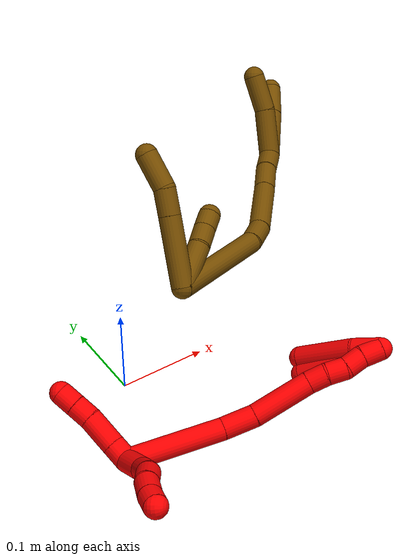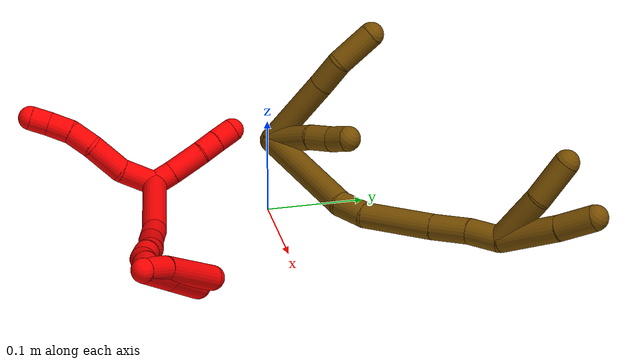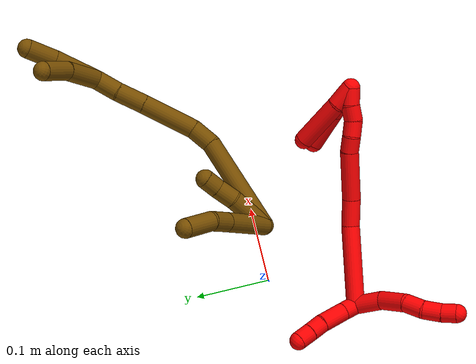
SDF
<sdf version="1.7">
 <world name="default">
  <model name="2">
   <static>0</static>
   <link name="2">
    <collision name="collision-cylinder-e_1_2_8">
     <pose>-0.012272 -0.00541 0.014466 0.35787 -0.671418 -0.126049</pose>
     <geometry><cylinder><radius>0.0125</radius><length>0.039454</length></cylinder></geometry>
     <surface>
      <friction><ode><mu>1.16</mu><mu2>1.16</mu2><slip1>0</slip1><slip2>0</slip2></ode></friction>
      <contact><ode><kp>1e+06</kp><kd>1</kd><max_vel>0</max_vel><min_depth>0.001</min_depth></ode></contact>
     </surface>
    </collision>
    <visual name="visual-cylinder-e_1_2_8">
     <pose>-0.012272 -0.00541 0.014466 0.35787 -0.671418 -0.126049</pose>
     <geometry><cylinder><radius>0.0125</radius><length>0.039454</length></cylinder></geometry>
     <material><ambient>1 0 0 1</ambient></material>
    </visual>
    <collision name="collision-cylinder-e_2_8_9">
     <pose>-0.041014 -0.013768 0.039009 0.28461 -1.00333 -0.156839</pose>
     <geometry><cylinder><radius>0.0125</radius><length>0.039063</length></cylinder></geometry>
     <surface>
      <friction><ode><mu>1.16</mu><mu2>1.16</mu2><slip1>0</slip1><slip2>0</slip2></ode></friction>
      <contact><ode><kp>1e+06</kp><kd>1</kd><max_vel>0</max_vel><min_depth>0.001</min_depth></ode></contact>
     </surface>
    </collision>
    <visual name="visual-cylinder-e_2_8_9">
     <pose>-0.041014 -0.013768 0.039009 0.28461 -1.00333 -0.156839</pose>
     <geometry><cylinder><radius>0.0125</radius><length>0.039063</length></cylinder></geometry>
     <material><ambient>1 0 0 1</ambient></material>
    </visual>
    <collision name="collision-cylinder-e_3_9_10">
     <pose>-0.068954 -0.022055 0.053333 0.898626 -1.03412 -0.535274</pose>
     <geometry><cylinder><radius>0.0125</radius><length>0.026692</length></cylinder></geometry>
     <surface>
      <friction><ode><mu>1.16</mu><mu2>1.16</mu2><slip1>0</slip1><slip2>0</slip2></ode></friction>
      <contact><ode><kp>1e+06</kp><kd>1</kd><max_vel>0</max_vel><min_depth>0.001</min_depth></ode></contact>
     </surface>
    </collision>
    <visual name="visual-cylinder-e_3_9_10">
     <pose>-0.068954 -0.022055 0.053333 0.898626 -1.03412 -0.535274</pose>
     <geometry><cylinder><radius>0.0125</radius><length>0.026692</length></cylinder></geometry>
     <material><ambient>1 0 0 1</ambient></material>
    </visual>
    <collision name="collision-cylinder-e_4_10_11">
     <pose>-0.089059 -0.034055 0.063322 0.859537 -0.776304 -0.370529</pose>
     <geometry><cylinder><radius>0.0125</radius><length>0.024649</length></cylinder></geometry>
     <surface>
      <friction><ode><mu>1.16</mu><mu2>1.16</mu2><slip1>0</slip1><slip2>0</slip2></ode></friction>
      <contact><ode><kp>1e+06</kp><kd>1</kd><max_vel>0</max_vel><min_depth>0.001</min_depth></ode></contact>
     </surface>
    </collision>
    <visual name="visual-cylinder-e_4_10_11">
     <pose>-0.089059 -0.034055 0.063322 0.859537 -0.776304 -0.370529</pose>
     <geometry><cylinder><radius>0.0125</radius><length>0.024649</length></cylinder></geometry>
     <material><ambient>1 0 0 1</ambient></material>
    </visual>
    <collision name="collision-cylinder-e_5_11_6">
     <pose>-0.104193 -0.045739 0.074892 0.71113 -0.701403 -0.270043</pose>
     <geometry><cylinder><radius>0.0125</radius><length>0.020143</length></cylinder></geometry>
     <surface>
      <friction><ode><mu>1.16</mu><mu2>1.16</mu2><slip1>0</slip1><slip2>0</slip2></ode></friction>
      <contact><ode><kp>1e+06</kp><kd>1</kd><max_vel>0</max_vel><min_depth>0.001</min_depth></ode></contact>
     </surface>
    </collision>
    <visual name="visual-cylinder-e_5_11_6">
     <pose>-0.104193 -0.045739 0.074892 0.71113 -0.701403 -0.270043</pose>
     <geometry><cylinder><radius>0.0125</radius><length>0.020143</length></cylinder></geometry>
     <material><ambient>1 0 0 1</ambient></material>
    </visual>
    <collision name="collision-cylinder-e_1_2_12">
     <pose>-0.001584 0.007609 -0.007274 -2.33372 -0.149318 0.346471</pose>
     <geometry><cylinder><radius>0.0125</radius><length>0.021291</length></cylinder></geometry>
     <surface>
      <friction><ode><mu>1.16</mu><mu2>1.16</mu2><slip1>0</slip1><slip2>0</slip2></ode></friction>
      <contact><ode><kp>1e+06</kp><kd>1</kd><max_vel>0</max_vel><min_depth>0.001</min_depth></ode></contact>
     </surface>
    </collision>
    <visual name="visual-cylinder-e_1_2_12">
     <pose>-0.001584 0.007609 -0.007274 -2.33372 -0.149318 0.346471</pose>
     <geometry><cylinder><radius>0.0125</radius><length>0.021291</length></cylinder></geometry>
     <material><ambient>1 0 0 1</ambient></material>
    </visual>
    <collision name="collision-cylinder-e_2_12_13">
     <pose>-0.006835 0.028543 -0.026838 -2.31575 -0.199651 0.449508</pose>
     <geometry><cylinder><radius>0.0125</radius><length>0.036988</length></cylinder></geometry>
     <surface>
      <friction><ode><mu>1.16</mu><mu2>1.16</mu2><slip1>0</slip1><slip2>0</slip2></ode></friction>
      <contact><ode><kp>1e+06</kp><kd>1</kd><max_vel>0</max_vel><min_depth>0.001</min_depth></ode></contact>
     </surface>
    </collision>
    <visual name="visual-cylinder-e_2_12_13">
     <pose>-0.006835 0.028543 -0.026838 -2.31575 -0.199651 0.449508</pose>
     <geometry><cylinder><radius>0.0125</radius><length>0.036988</length></cylinder></geometry>
     <material><ambient>1 0 0 1</ambient></material>
    </visual>
    <collision name="collision-cylinder-e_3_13_14">
     <pose>-0.013111 0.048338 -0.046914 -2.44839 -0.252078 0.674817</pose>
     <geometry><cylinder><radius>0.0125</radius><length>0.020909</length></cylinder></geometry>
     <surface>
      <friction><ode><mu>1.16</mu><mu2>1.16</mu2><slip1>0</slip1><slip2>0</slip2></ode></friction>
      <contact><ode><kp>1e+06</kp><kd>1</kd><max_vel>0</max_vel><min_depth>0.001</min_depth></ode></contact>
     </surface>
    </collision>
    <visual name="visual-cylinder-e_3_13_14">
     <pose>-0.013111 0.048338 -0.046914 -2.44839 -0.252078 0.674817</pose>
     <geometry><cylinder><radius>0.0125</radius><length>0.020909</length></cylinder></geometry>
     <material><ambient>1 0 0 1</ambient></material>
    </visual>
    <collision name="collision-cylinder-e_4_14_5">
     <pose>-0.018023 0.061225 -0.062562 -2.45688 -0.223327 0.609646</pose>
     <geometry><cylinder><radius>0.0125</radius><length>0.020812</length></cylinder></geometry>
     <surface>
      <friction><ode><mu>1.16</mu><mu2>1.16</mu2><slip1>0</slip1><slip2>0</slip2></ode></friction>
      <contact><ode><kp>1e+06</kp><kd>1</kd><max_vel>0</max_vel><min_depth>0.001</min_depth></ode></contact>
     </surface>
    </collision>
    <visual name="visual-cylinder-e_4_14_5">
     <pose>-0.018023 0.061225 -0.062562 -2.45688 -0.223327 0.609646</pose>
     <geometry><cylinder><radius>0.0125</radius><length>0.020812</length></cylinder></geometry>
     <material><ambient>1 0 0 1</ambient></material>
    </visual>
    <collision name="collision-cylinder-e_1_2_15">
     <pose>0.028809 0.01939 0.041359 -0.438392 0.562689 -0.128592</pose>
     <geometry><cylinder><radius>0.0125</radius><length>0.108009</length></cylinder></geometry>
     <surface>
      <friction><ode><mu>1.16</mu><mu2>1.16</mu2><slip1>0</slip1><slip2>0</slip2></ode></friction>
      <contact><ode><kp>1e+06</kp><kd>1</kd><max_vel>0</max_vel><min_depth>0.001</min_depth></ode></contact>
     </surface>
    </collision>
    <visual name="visual-cylinder-e_1_2_15">
     <pose>0.028809 0.01939 0.041359 -0.438392 0.562689 -0.128592</pose>
     <geometry><cylinder><radius>0.0125</radius><length>0.108009</length></cylinder></geometry>
     <material><ambient>1 0 0 1</ambient></material>
    </visual>
    <collision name="collision-cylinder-e_2_15_16">
     <pose>0.063967 0.046546 0.09836 -0.460822 0.348637 -0.082574</pose>
     <geometry><cylinder><radius>0.0125</radius><length>0.037164</length></cylinder></geometry>
     <surface>
      <friction><ode><mu>1.16</mu><mu2>1.16</mu2><slip1>0</slip1><slip2>0</slip2></ode></friction>
      <contact><ode><kp>1e+06</kp><kd>1</kd><max_vel>0</max_vel><min_depth>0.001</min_depth></ode></contact>
     </surface>
    </collision>
    <visual name="visual-cylinder-e_2_15_16">
     <pose>0.063967 0.046546 0.09836 -0.460822 0.348637 -0.082574</pose>
     <geometry><cylinder><radius>0.0125</radius><length>0.037164</length></cylinder></geometry>
     <material><ambient>1 0 0 1</ambient></material>
    </visual>
    <collision name="collision-cylinder-e_3_16_17">
     <pose>0.078746 0.072857 0.140846 -0.604585 0.252882 -0.079243</pose>
     <geometry><cylinder><radius>0.0125</radius><length>0.067397</length></cylinder></geometry>
     <surface>
      <friction><ode><mu>1.16</mu><mu2>1.16</mu2><slip1>0</slip1><slip2>0</slip2></ode></friction>
      <contact><ode><kp>1e+06</kp><kd>1</kd><max_vel>0</max_vel><min_depth>0.001</min_depth></ode></contact>
     </surface>
    </collision>
    <visual name="visual-cylinder-e_3_16_17">
     <pose>0.078746 0.072857 0.140846 -0.604585 0.252882 -0.079243</pose>
     <geometry><cylinder><radius>0.0125</radius><length>0.067397</length></cylinder></geometry>
     <material><ambient>1 0 0 1</ambient></material>
    </visual>
    <collision name="collision-cylinder-e_4_17_18">
     <pose>0.088839 0.096154 0.177228 -0.462085 0.154681 -0.036456</pose>
     <geometry><cylinder><radius>0.0125</radius><length>0.021572</length></cylinder></geometry>
     <surface>
      <friction><ode><mu>1.16</mu><mu2>1.16</mu2><slip1>0</slip1><slip2>0</slip2></ode></friction>
      <contact><ode><kp>1e+06</kp><kd>1</kd><max_vel>0</max_vel><min_depth>0.001</min_depth></ode></contact>
     </surface>
    </collision>
    <visual name="visual-cylinder-e_4_17_18">
     <pose>0.088839 0.096154 0.177228 -0.462085 0.154681 -0.036456</pose>
     <geometry><cylinder><radius>0.0125</radius><length>0.021572</length></cylinder></geometry>
     <material><ambient>1 0 0 1</ambient></material>
    </visual>
    <collision name="collision-cylinder-e_5_18_19">
     <pose>0.094027 0.104475 0.196201 -0.361808 0.336322 -0.062081</pose>
     <geometry><cylinder><radius>0.0125</radius><length>0.02137</length></cylinder></geometry>
     <surface>
      <friction><ode><mu>1.16</mu><mu2>1.16</mu2><slip1>0</slip1><slip2>0</slip2></ode></friction>
      <contact><ode><kp>1e+06</kp><kd>1</kd><max_vel>0</max_vel><min_depth>0.001</min_depth></ode></contact>
     </surface>
    </collision>
    <visual name="visual-cylinder-e_5_18_19">
     <pose>0.094027 0.104475 0.196201 -0.361808 0.336322 -0.062081</pose>
     <geometry><cylinder><radius>0.0125</radius><length>0.02137</length></cylinder></geometry>
     <material><ambient>1 0 0 1</ambient></material>
    </visual>
    <collision name="collision-cylinder-e_6_19_20">
     <pose>0.10135 0.114742 0.213201 -0.724518 0.359448 -0.137494</pose>
     <geometry><cylinder><radius>0.0125</radius><length>0.021588</length></cylinder></geometry>
     <surface>
      <friction><ode><mu>1.16</mu><mu2>1.16</mu2><slip1>0</slip1><slip2>0</slip2></ode></friction>
      <contact><ode><kp>1e+06</kp><kd>1</kd><max_vel>0</max_vel><min_depth>0.001</min_depth></ode></contact>
     </surface>
    </collision>
    <visual name="visual-cylinder-e_6_19_20">
     <pose>0.10135 0.114742 0.213201 -0.724518 0.359448 -0.137494</pose>
     <geometry><cylinder><radius>0.0125</radius><length>0.021588</length></cylinder></geometry>
     <material><ambient>1 0 0 1</ambient></material>
    </visual>
    <collision name="collision-cylinder-e_7_20_1">
     <pose>0.109143 0.126239 0.230364 -0.463759 0.356502 -0.085031</pose>
     <geometry><cylinder><radius>0.0125</radius><length>0.0229</length></cylinder></geometry>
     <surface>
      <friction><ode><mu>1.16</mu><mu2>1.16</mu2><slip1>0</slip1><slip2>0</slip2></ode></friction>
      <contact><ode><kp>1e+06</kp><kd>1</kd><max_vel>0</max_vel><min_depth>0.001</min_depth></ode></contact>
     </surface>
    </collision>
    <visual name="visual-cylinder-e_7_20_1">
     <pose>0.109143 0.126239 0.230364 -0.463759 0.356502 -0.085031</pose>
     <geometry><cylinder><radius>0.0125</radius><length>0.0229</length></cylinder></geometry>
     <material><ambient>1 0 0 1</ambient></material>
    </visual>
    <collision name="collision-cylinder-e_1_1_21">
     <pose>0.118833 0.126125 0.218504 2.91647 0.253143 1.68894</pose>
     <geometry><cylinder><radius>0.0125</radius><length>0.045472</length></cylinder></geometry>
     <surface>
      <friction><ode><mu>1.16</mu><mu2>1.16</mu2><slip1>0</slip1><slip2>0</slip2></ode></friction>
      <contact><ode><kp>1e+06</kp><kd>1</kd><max_vel>0</max_vel><min_depth>0.001</min_depth></ode></contact>
     </surface>
    </collision>
    <visual name="visual-cylinder-e_1_1_21">
     <pose>0.118833 0.126125 0.218504 2.91647 0.253143 1.68894</pose>
     <geometry><cylinder><radius>0.0125</radius><length>0.045472</length></cylinder></geometry>
     <material><ambient>1 0 0 1</ambient></material>
    </visual>
    <collision name="collision-cylinder-e_2_21_4">
     <pose>0.131218 0.115172 0.171317 2.91105 0.247924 1.64413</pose>
     <geometry><cylinder><radius>0.0125</radius><length>0.054528</length></cylinder></geometry>
     <surface>
      <friction><ode><mu>1.16</mu><mu2>1.16</mu2><slip1>0</slip1><slip2>0</slip2></ode></friction>
      <contact><ode><kp>1e+06</kp><kd>1</kd><max_vel>0</max_vel><min_depth>0.001</min_depth></ode></contact>
     </surface>
    </collision>
    <visual name="visual-cylinder-e_2_21_4">
     <pose>0.131218 0.115172 0.171317 2.91105 0.247924 1.64413</pose>
     <geometry><cylinder><radius>0.0125</radius><length>0.054528</length></cylinder></geometry>
     <material><ambient>1 0 0 1</ambient></material>
    </visual>
    <collision name="collision-cylinder-e_1_1_22">
     <pose>0.115034 0.131345 0.22466 -3.12154 0.123232 -2.8194</pose>
     <geometry><cylinder><radius>0.0125</radius><length>0.03084</length></cylinder></geometry>
     <surface>
      <friction><ode><mu>1.16</mu><mu2>1.16</mu2><slip1>0</slip1><slip2>0</slip2></ode></friction>
      <contact><ode><kp>1e+06</kp><kd>1</kd><max_vel>0</max_vel><min_depth>0.001</min_depth></ode></contact>
     </surface>
    </collision>
    <visual name="visual-cylinder-e_1_1_22">
     <pose>0.115034 0.131345 0.22466 -3.12154 0.123232 -2.8194</pose>
     <geometry><cylinder><radius>0.0125</radius><length>0.03084</length></cylinder></geometry>
     <material><ambient>1 0 0 1</ambient></material>
    </visual>
    <collision name="collision-cylinder-e_2_22_3">
     <pose>0.126966 0.129412 0.176345 3.07383 0.294461 2.69225</pose>
     <geometry><cylinder><radius>0.0125</radius><length>0.06916</length></cylinder></geometry>
     <surface>
      <friction><ode><mu>1.16</mu><mu2>1.16</mu2><slip1>0</slip1><slip2>0</slip2></ode></friction>
      <contact><ode><kp>1e+06</kp><kd>1</kd><max_vel>0</max_vel><min_depth>0.001</min_depth></ode></contact>
     </surface>
    </collision>
    <visual name="visual-cylinder-e_2_22_3">
     <pose>0.126966 0.129412 0.176345 3.07383 0.294461 2.69225</pose>
     <geometry><cylinder><radius>0.0125</radius><length>0.06916</length></cylinder></geometry>
     <material><ambient>1 0 0 1</ambient></material>
    </visual>
    <collision name="collision-sphere-3">
     <pose>0.137002 0.127171 0.143329 0 -0 0</pose>
     <geometry><sphere><radius>0.0125</radius></sphere></geometry>
     <surface>
      <friction><ode><mu>1.16</mu><mu2>1.16</mu2><slip1>0</slip1><slip2>0</slip2></ode></friction>
      <contact><ode><kp>1e+06</kp><kd>1</kd><max_vel>0</max_vel><min_depth>0.001</min_depth></ode></contact>
     </surface>
    </collision>
    <visual name="visual-sphere-3">
     <pose>0.137002 0.127171 0.143329 0 -0 0</pose>
     <geometry><sphere><radius>0.0125</radius></sphere></geometry>
     <material><ambient>1 0 0 1</ambient></material>
    </visual>
    <collision name="collision-sphere-22">
     <pose>0.11693 0.131652 0.209361 0 -0 0</pose>
     <geometry><sphere><radius>0.0125</radius></sphere></geometry>
     <surface>
      <friction><ode><mu>1.16</mu><mu2>1.16</mu2><slip1>0</slip1><slip2>0</slip2></ode></friction>
      <contact><ode><kp>1e+06</kp><kd>1</kd><max_vel>0</max_vel><min_depth>0.001</min_depth></ode></contact>
     </surface>
    </collision>
    <visual name="visual-sphere-22">
     <pose>0.11693 0.131652 0.209361 0 -0 0</pose>
     <geometry><sphere><radius>0.0125</radius></sphere></geometry>
     <material><ambient>1 0 0 1</ambient></material>
    </visual>
    <collision name="collision-sphere-4">
     <pose>0.137908 0.109133 0.145586 0 -0 0</pose>
     <geometry><sphere><radius>0.0125</radius></sphere></geometry>
     <surface>
      <friction><ode><mu>1.16</mu><mu2>1.16</mu2><slip1>0</slip1><slip2>0</slip2></ode></friction>
      <contact><ode><kp>1e+06</kp><kd>1</kd><max_vel>0</max_vel><min_depth>0.001</min_depth></ode></contact>
     </surface>
    </collision>
    <visual name="visual-sphere-4">
     <pose>0.137908 0.109133 0.145586 0 -0 0</pose>
     <geometry><sphere><radius>0.0125</radius></sphere></geometry>
     <material><ambient>1 0 0 1</ambient></material>
    </visual>
    <collision name="collision-sphere-21">
     <pose>0.124527 0.121211 0.197049 0 -0 0</pose>
     <geometry><sphere><radius>0.0125</radius></sphere></geometry>
     <surface>
      <friction><ode><mu>1.16</mu><mu2>1.16</mu2><slip1>0</slip1><slip2>0</slip2></ode></friction>
      <contact><ode><kp>1e+06</kp><kd>1</kd><max_vel>0</max_vel><min_depth>0.001</min_depth></ode></contact>
     </surface>
    </collision>
    <visual name="visual-sphere-21">
     <pose>0.124527 0.121211 0.197049 0 -0 0</pose>
     <geometry><sphere><radius>0.0125</radius></sphere></geometry>
     <material><ambient>1 0 0 1</ambient></material>
    </visual>
    <collision name="collision-sphere-1">
     <pose>0.113139 0.131038 0.23996 0 -0 0</pose>
     <geometry><sphere><radius>0.0125</radius></sphere></geometry>
     <surface>
      <friction><ode><mu>1.16</mu><mu2>1.16</mu2><slip1>0</slip1><slip2>0</slip2></ode></friction>
      <contact><ode><kp>1e+06</kp><kd>1</kd><max_vel>0</max_vel><min_depth>0.001</min_depth></ode></contact>
     </surface>
    </collision>
    <visual name="visual-sphere-1">
     <pose>0.113139 0.131038 0.23996 0 -0 0</pose>
     <geometry><sphere><radius>0.0125</radius></sphere></geometry>
     <material><ambient>1 0 0 1</ambient></material>
    </visual>
    <collision name="collision-sphere-6">
     <pose>-0.110692 -0.05076 0.080721 0 -0 0</pose>
     <geometry><sphere><radius>0.0125</radius></sphere></geometry>
     <surface>
      <friction><ode><mu>1.16</mu><mu2>1.16</mu2><slip1>0</slip1><slip2>0</slip2></ode></friction>
      <contact><ode><kp>1e+06</kp><kd>1</kd><max_vel>0</max_vel><min_depth>0.001</min_depth></ode></contact>
     </surface>
    </collision>
    <visual name="visual-sphere-6">
     <pose>-0.110692 -0.05076 0.080721 0 -0 0</pose>
     <geometry><sphere><radius>0.0125</radius></sphere></geometry>
     <material><ambient>1 0 0 1</ambient></material>
    </visual>
    <collision name="collision-sphere-11">
     <pose>-0.097694 -0.040717 0.069063 0 -0 0</pose>
     <geometry><sphere><radius>0.0125</radius></sphere></geometry>
     <surface>
      <friction><ode><mu>1.16</mu><mu2>1.16</mu2><slip1>0</slip1><slip2>0</slip2></ode></friction>
      <contact><ode><kp>1e+06</kp><kd>1</kd><max_vel>0</max_vel><min_depth>0.001</min_depth></ode></contact>
     </surface>
    </collision>
    <visual name="visual-sphere-11">
     <pose>-0.097694 -0.040717 0.069063 0 -0 0</pose>
     <geometry><sphere><radius>0.0125</radius></sphere></geometry>
     <material><ambient>1 0 0 1</ambient></material>
    </visual>
    <collision name="collision-sphere-10">
     <pose>-0.080424 -0.027394 0.057582 0 -0 0</pose>
     <geometry><sphere><radius>0.0125</radius></sphere></geometry>
     <surface>
      <friction><ode><mu>1.16</mu><mu2>1.16</mu2><slip1>0</slip1><slip2>0</slip2></ode></friction>
      <contact><ode><kp>1e+06</kp><kd>1</kd><max_vel>0</max_vel><min_depth>0.001</min_depth></ode></contact>
     </surface>
    </collision>
    <visual name="visual-sphere-10">
     <pose>-0.080424 -0.027394 0.057582 0 -0 0</pose>
     <geometry><sphere><radius>0.0125</radius></sphere></geometry>
     <material><ambient>1 0 0 1</ambient></material>
    </visual>
    <collision name="collision-sphere-9">
     <pose>-0.057484 -0.016715 0.049084 0 -0 0</pose>
     <geometry><sphere><radius>0.0125</radius></sphere></geometry>
     <surface>
      <friction><ode><mu>1.16</mu><mu2>1.16</mu2><slip1>0</slip1><slip2>0</slip2></ode></friction>
      <contact><ode><kp>1e+06</kp><kd>1</kd><max_vel>0</max_vel><min_depth>0.001</min_depth></ode></contact>
     </surface>
    </collision>
    <visual name="visual-sphere-9">
     <pose>-0.057484 -0.016715 0.049084 0 -0 0</pose>
     <geometry><sphere><radius>0.0125</radius></sphere></geometry>
     <material><ambient>1 0 0 1</ambient></material>
    </visual>
    <collision name="collision-sphere-2">
     <geometry><sphere><radius>0.0125</radius></sphere></geometry>
     <surface>
      <friction><ode><mu>1.16</mu><mu2>1.16</mu2><slip1>0</slip1><slip2>0</slip2></ode></friction>
      <contact><ode><kp>1e+06</kp><kd>1</kd><max_vel>0</max_vel><min_depth>0.001</min_depth></ode></contact>
     </surface>
    </collision>
    <visual name="visual-sphere-2">
     <geometry><sphere><radius>0.0125</radius></sphere></geometry>
     <material><ambient>1 0 0 1</ambient></material>
    </visual>
    <collision name="collision-sphere-19">
     <pose>0.097553 0.108046 0.205635 0 -0 0</pose>
     <geometry><sphere><radius>0.0125</radius></sphere></geometry>
     <surface>
      <friction><ode><mu>1.16</mu><mu2>1.16</mu2><slip1>0</slip1><slip2>0</slip2></ode></friction>
      <contact><ode><kp>1e+06</kp><kd>1</kd><max_vel>0</max_vel><min_depth>0.001</min_depth></ode></contact>
     </surface>
    </collision>
    <visual name="visual-sphere-19">
     <pose>0.097553 0.108046 0.205635 0 -0 0</pose>
     <geometry><sphere><radius>0.0125</radius></sphere></geometry>
     <material><ambient>1 0 0 1</ambient></material>
    </visual>
    <collision name="collision-sphere-8">
     <pose>-0.024544 -0.01082 0.028933 0 -0 0</pose>
     <geometry><sphere><radius>0.0125</radius></sphere></geometry>
     <surface>
      <friction><ode><mu>1.16</mu><mu2>1.16</mu2><slip1>0</slip1><slip2>0</slip2></ode></friction>
      <contact><ode><kp>1e+06</kp><kd>1</kd><max_vel>0</max_vel><min_depth>0.001</min_depth></ode></contact>
     </surface>
    </collision>
    <visual name="visual-sphere-8">
     <pose>-0.024544 -0.01082 0.028933 0 -0 0</pose>
     <geometry><sphere><radius>0.0125</radius></sphere></geometry>
     <material><ambient>1 0 0 1</ambient></material>
    </visual>
    <collision name="collision-sphere-12">
     <pose>-0.003167 0.015218 -0.014549 0 -0 0</pose>
     <geometry><sphere><radius>0.0125</radius></sphere></geometry>
     <surface>
      <friction><ode><mu>1.16</mu><mu2>1.16</mu2><slip1>0</slip1><slip2>0</slip2></ode></friction>
      <contact><ode><kp>1e+06</kp><kd>1</kd><max_vel>0</max_vel><min_depth>0.001</min_depth></ode></contact>
     </surface>
    </collision>
    <visual name="visual-sphere-12">
     <pose>-0.003167 0.015218 -0.014549 0 -0 0</pose>
     <geometry><sphere><radius>0.0125</radius></sphere></geometry>
     <material><ambient>1 0 0 1</ambient></material>
    </visual>
    <collision name="collision-sphere-13">
     <pose>-0.010503 0.041869 -0.039127 0 -0 0</pose>
     <geometry><sphere><radius>0.0125</radius></sphere></geometry>
     <surface>
      <friction><ode><mu>1.16</mu><mu2>1.16</mu2><slip1>0</slip1><slip2>0</slip2></ode></friction>
      <contact><ode><kp>1e+06</kp><kd>1</kd><max_vel>0</max_vel><min_depth>0.001</min_depth></ode></contact>
     </surface>
    </collision>
    <visual name="visual-sphere-13">
     <pose>-0.010503 0.041869 -0.039127 0 -0 0</pose>
     <geometry><sphere><radius>0.0125</radius></sphere></geometry>
     <material><ambient>1 0 0 1</ambient></material>
    </visual>
    <collision name="collision-sphere-14">
     <pose>-0.015718 0.054807 -0.054701 0 -0 0</pose>
     <geometry><sphere><radius>0.0125</radius></sphere></geometry>
     <surface>
      <friction><ode><mu>1.16</mu><mu2>1.16</mu2><slip1>0</slip1><slip2>0</slip2></ode></friction>
      <contact><ode><kp>1e+06</kp><kd>1</kd><max_vel>0</max_vel><min_depth>0.001</min_depth></ode></contact>
     </surface>
    </collision>
    <visual name="visual-sphere-14">
     <pose>-0.015718 0.054807 -0.054701 0 -0 0</pose>
     <geometry><sphere><radius>0.0125</radius></sphere></geometry>
     <material><ambient>1 0 0 1</ambient></material>
    </visual>
    <collision name="collision-sphere-5">
     <pose>-0.020327 0.067643 -0.070422 0 -0 0</pose>
     <geometry><sphere><radius>0.0125</radius></sphere></geometry>
     <surface>
      <friction><ode><mu>1.16</mu><mu2>1.16</mu2><slip1>0</slip1><slip2>0</slip2></ode></friction>
      <contact><ode><kp>1e+06</kp><kd>1</kd><max_vel>0</max_vel><min_depth>0.001</min_depth></ode></contact>
     </surface>
    </collision>
    <visual name="visual-sphere-5">
     <pose>-0.020327 0.067643 -0.070422 0 -0 0</pose>
     <geometry><sphere><radius>0.0125</radius></sphere></geometry>
     <material><ambient>1 0 0 1</ambient></material>
    </visual>
    <collision name="collision-sphere-15">
     <pose>0.057619 0.03878 0.082718 0 -0 0</pose>
     <geometry><sphere><radius>0.0125</radius></sphere></geometry>
     <surface>
      <friction><ode><mu>1.16</mu><mu2>1.16</mu2><slip1>0</slip1><slip2>0</slip2></ode></friction>
      <contact><ode><kp>1e+06</kp><kd>1</kd><max_vel>0</max_vel><min_depth>0.001</min_depth></ode></contact>
     </surface>
    </collision>
    <visual name="visual-sphere-15">
     <pose>0.057619 0.03878 0.082718 0 -0 0</pose>
     <geometry><sphere><radius>0.0125</radius></sphere></geometry>
     <material><ambient>1 0 0 1</ambient></material>
    </visual>
    <collision name="collision-sphere-16">
     <pose>0.070315 0.054312 0.114002 0 -0 0</pose>
     <geometry><sphere><radius>0.0125</radius></sphere></geometry>
     <surface>
      <friction><ode><mu>1.16</mu><mu2>1.16</mu2><slip1>0</slip1><slip2>0</slip2></ode></friction>
      <contact><ode><kp>1e+06</kp><kd>1</kd><max_vel>0</max_vel><min_depth>0.001</min_depth></ode></contact>
     </surface>
    </collision>
    <visual name="visual-sphere-16">
     <pose>0.070315 0.054312 0.114002 0 -0 0</pose>
     <geometry><sphere><radius>0.0125</radius></sphere></geometry>
     <material><ambient>1 0 0 1</ambient></material>
    </visual>
    <collision name="collision-sphere-17">
     <pose>0.087177 0.091403 0.167689 0 -0 0</pose>
     <geometry><sphere><radius>0.0125</radius></sphere></geometry>
     <surface>
      <friction><ode><mu>1.16</mu><mu2>1.16</mu2><slip1>0</slip1><slip2>0</slip2></ode></friction>
      <contact><ode><kp>1e+06</kp><kd>1</kd><max_vel>0</max_vel><min_depth>0.001</min_depth></ode></contact>
     </surface>
    </collision>
    <visual name="visual-sphere-17">
     <pose>0.087177 0.091403 0.167689 0 -0 0</pose>
     <geometry><sphere><radius>0.0125</radius></sphere></geometry>
     <material><ambient>1 0 0 1</ambient></material>
    </visual>
    <collision name="collision-sphere-18">
     <pose>0.090501 0.100905 0.186768 0 -0 0</pose>
     <geometry><sphere><radius>0.0125</radius></sphere></geometry>
     <surface>
      <friction><ode><mu>1.16</mu><mu2>1.16</mu2><slip1>0</slip1><slip2>0</slip2></ode></friction>
      <contact><ode><kp>1e+06</kp><kd>1</kd><max_vel>0</max_vel><min_depth>0.001</min_depth></ode></contact>
     </surface>
    </collision>
    <visual name="visual-sphere-18">
     <pose>0.090501 0.100905 0.186768 0 -0 0</pose>
     <geometry><sphere><radius>0.0125</radius></sphere></geometry>
     <material><ambient>1 0 0 1</ambient></material>
    </visual>
    <collision name="collision-sphere-20">
     <pose>0.105147 0.121439 0.220767 0 -0 0</pose>
     <geometry><sphere><radius>0.0125</radius></sphere></geometry>
     <surface>
      <friction><ode><mu>1.16</mu><mu2>1.16</mu2><slip1>0</slip1><slip2>0</slip2></ode></friction>
      <contact><ode><kp>1e+06</kp><kd>1</kd><max_vel>0</max_vel><min_depth>0.001</min_depth></ode></contact>
     </surface>
    </collision>
    <visual name="visual-sphere-20">
     <pose>0.105147 0.121439 0.220767 0 -0 0</pose>
     <geometry><sphere><radius>0.0125</radius></sphere></geometry>
     <material><ambient>1 0 0 1</ambient></material>
    </visual>
    <inertial>
     <pose>0.046853 0.058436 0.102757 0 -0 0</pose>
     <mass>0.75</mass>
     <inertia>
      <ixx>0.000146</ixx>
      <ixy>0</ixy>
      <ixz>0</ixz>
      <iyy>0.000215</iyy>
      <iyz>0</iyz>
      <izz>-0.000118</izz>
     </inertia>
    </inertial>
   </link>
   <pose>-0.06064 -0.107484 0.011492 1.20371 0.840875 0.448831</pose>
  </model>
  <model name="12">
   <static>0</static>
   <link name="12">
    <collision name="collision-cylinder-e_1_2_8">
     <pose>-0.00478 0.005579 0.03856 -0.143691 -0.122064 0.008796</pose>
     <geometry><cylinder><radius>0.0125</radius><length>0.078506</length></cylinder></geometry>
     <surface>
      <friction><ode><mu>1.16</mu><mu2>1.16</mu2><slip1>0</slip1><slip2>0</slip2></ode></friction>
      <contact><ode><kp>1e+06</kp><kd>1</kd><max_vel>0</max_vel><min_depth>0.001</min_depth></ode></contact>
     </surface>
    </collision>
    <visual name="visual-cylinder-e_1_2_8">
     <pose>-0.00478 0.005579 0.03856 -0.143691 -0.122064 0.008796</pose>
     <geometry><cylinder><radius>0.0125</radius><length>0.078506</length></cylinder></geometry>
     <material><ambient>0.466667 0.301961 0 1</ambient></material>
    </visual>
    <collision name="collision-cylinder-e_2_8_9">
     <pose>-0.011735 0.01308 0.091929 -0.129057 -0.14467 0.009365</pose>
     <geometry><cylinder><radius>0.0125</radius><length>0.030183</length></cylinder></geometry>
     <surface>
      <friction><ode><mu>1.16</mu><mu2>1.16</mu2><slip1>0</slip1><slip2>0</slip2></ode></friction>
      <contact><ode><kp>1e+06</kp><kd>1</kd><max_vel>0</max_vel><min_depth>0.001</min_depth></ode></contact>
     </surface>
    </collision>
    <visual name="visual-cylinder-e_2_8_9">
     <pose>-0.011735 0.01308 0.091929 -0.129057 -0.14467 0.009365</pose>
     <geometry><cylinder><radius>0.0125</radius><length>0.030183</length></cylinder></geometry>
     <material><ambient>0.466667 0.301961 0 1</ambient></material>
    </visual>
    <collision name="collision-cylinder-e_3_9_6">
     <pose>-0.019842 0.023418 0.124645 -0.439381 -0.291255 0.065476</pose>
     <geometry><cylinder><radius>0.0125</radius><length>0.04131</length></cylinder></geometry>
     <surface>
      <friction><ode><mu>1.16</mu><mu2>1.16</mu2><slip1>0</slip1><slip2>0</slip2></ode></friction>
      <contact><ode><kp>1e+06</kp><kd>1</kd><max_vel>0</max_vel><min_depth>0.001</min_depth></ode></contact>
     </surface>
    </collision>
    <visual name="visual-cylinder-e_3_9_6">
     <pose>-0.019842 0.023418 0.124645 -0.439381 -0.291255 0.065476</pose>
     <geometry><cylinder><radius>0.0125</radius><length>0.04131</length></cylinder></geometry>
     <material><ambient>0.466667 0.301961 0 1</ambient></material>
    </visual>
    <collision name="collision-cylinder-e_1_2_10">
     <pose>0.015454 0.006476 0.021546 -0.291982 0.60187 -0.091206</pose>
     <geometry><cylinder><radius>0.0125</radius><length>0.054589</length></cylinder></geometry>
     <surface>
      <friction><ode><mu>1.16</mu><mu2>1.16</mu2><slip1>0</slip1><slip2>0</slip2></ode></friction>
      <contact><ode><kp>1e+06</kp><kd>1</kd><max_vel>0</max_vel><min_depth>0.001</min_depth></ode></contact>
     </surface>
    </collision>
    <visual name="visual-cylinder-e_1_2_10">
     <pose>0.015454 0.006476 0.021546 -0.291982 0.60187 -0.091206</pose>
     <geometry><cylinder><radius>0.0125</radius><length>0.054589</length></cylinder></geometry>
     <material><ambient>0.466667 0.301961 0 1</ambient></material>
    </visual>
    <collision name="collision-cylinder-e_2_10_11">
     <pose>0.038328 0.018066 0.05188 -0.527017 0.630492 -0.175511</pose>
     <geometry><cylinder><radius>0.0125</radius><length>0.025175</length></cylinder></geometry>
     <surface>
      <friction><ode><mu>1.16</mu><mu2>1.16</mu2><slip1>0</slip1><slip2>0</slip2></ode></friction>
      <contact><ode><kp>1e+06</kp><kd>1</kd><max_vel>0</max_vel><min_depth>0.001</min_depth></ode></contact>
     </surface>
    </collision>
    <visual name="visual-cylinder-e_2_10_11">
     <pose>0.038328 0.018066 0.05188 -0.527017 0.630492 -0.175511</pose>
     <geometry><cylinder><radius>0.0125</radius><length>0.025175</length></cylinder></geometry>
     <material><ambient>0.466667 0.301961 0 1</ambient></material>
    </visual>
    <collision name="collision-cylinder-e_3_11_5">
     <pose>0.051466 0.026149 0.06847 -0.363641 0.60041 -0.113704</pose>
     <geometry><cylinder><radius>0.0125</radius><length>0.020236</length></cylinder></geometry>
     <surface>
      <friction><ode><mu>1.16</mu><mu2>1.16</mu2><slip1>0</slip1><slip2>0</slip2></ode></friction>
      <contact><ode><kp>1e+06</kp><kd>1</kd><max_vel>0</max_vel><min_depth>0.001</min_depth></ode></contact>
     </surface>
    </collision>
    <visual name="visual-cylinder-e_3_11_5">
     <pose>0.051466 0.026149 0.06847 -0.363641 0.60041 -0.113704</pose>
     <geometry><cylinder><radius>0.0125</radius><length>0.020236</length></cylinder></geometry>
     <material><ambient>0.466667 0.301961 0 1</ambient></material>
    </visual>
    <collision name="collision-cylinder-e_1_2_12">
     <pose>0.058253 0.014068 0.022391 -0.560964 1.14466 -0.367018</pose>
     <geometry><cylinder><radius>0.0125</radius><length>0.127949</length></cylinder></geometry>
     <surface>
      <friction><ode><mu>1.16</mu><mu2>1.16</mu2><slip1>0</slip1><slip2>0</slip2></ode></friction>
      <contact><ode><kp>1e+06</kp><kd>1</kd><max_vel>0</max_vel><min_depth>0.001</min_depth></ode></contact>
     </surface>
    </collision>
    <visual name="visual-cylinder-e_1_2_12">
     <pose>0.058253 0.014068 0.022391 -0.560964 1.14466 -0.367018</pose>
     <geometry><cylinder><radius>0.0125</radius><length>0.127949</length></cylinder></geometry>
     <material><ambient>0.466667 0.301961 0 1</ambient></material>
    </visual>
    <collision name="collision-cylinder-e_2_12_13">
     <pose>0.127829 0.034926 0.052028 -0.752894 0.850857 -0.354461</pose>
     <geometry><cylinder><radius>0.0125</radius><length>0.030119</length></cylinder></geometry>
     <surface>
      <friction><ode><mu>1.16</mu><mu2>1.16</mu2><slip1>0</slip1><slip2>0</slip2></ode></friction>
      <contact><ode><kp>1e+06</kp><kd>1</kd><max_vel>0</max_vel><min_depth>0.001</min_depth></ode></contact>
     </surface>
    </collision>
    <visual name="visual-cylinder-e_2_12_13">
     <pose>0.127829 0.034926 0.052028 -0.752894 0.850857 -0.354461</pose>
     <geometry><cylinder><radius>0.0125</radius><length>0.030119</length></cylinder></geometry>
     <material><ambient>0.466667 0.301961 0 1</ambient></material>
    </visual>
    <collision name="collision-cylinder-e_3_13_14">
     <pose>0.159142 0.062004 0.081392 -0.742277 0.587553 -0.234394</pose>
     <geometry><cylinder><radius>0.0125</radius><length>0.072125</length></cylinder></geometry>
     <surface>
      <friction><ode><mu>1.16</mu><mu2>1.16</mu2><slip1>0</slip1><slip2>0</slip2></ode></friction>
      <contact><ode><kp>1e+06</kp><kd>1</kd><max_vel>0</max_vel><min_depth>0.001</min_depth></ode></contact>
     </surface>
    </collision>
    <visual name="visual-cylinder-e_3_13_14">
     <pose>0.159142 0.062004 0.081392 -0.742277 0.587553 -0.234394</pose>
     <geometry><cylinder><radius>0.0125</radius><length>0.072125</length></cylinder></geometry>
     <material><ambient>0.466667 0.301961 0 1</ambient></material>
    </visual>
    <collision name="collision-cylinder-e_4_14_15">
     <pose>0.188787 0.092772 0.115592 -0.714506 0.543157 -0.207136</pose>
     <geometry><cylinder><radius>0.0125</radius><length>0.037362</length></cylinder></geometry>
     <surface>
      <friction><ode><mu>1.16</mu><mu2>1.16</mu2><slip1>0</slip1><slip2>0</slip2></ode></friction>
      <contact><ode><kp>1e+06</kp><kd>1</kd><max_vel>0</max_vel><min_depth>0.001</min_depth></ode></contact>
     </surface>
    </collision>
    <visual name="visual-cylinder-e_4_14_15">
     <pose>0.188787 0.092772 0.115592 -0.714506 0.543157 -0.207136</pose>
     <geometry><cylinder><radius>0.0125</radius><length>0.037362</length></cylinder></geometry>
     <material><ambient>0.466667 0.301961 0 1</ambient></material>
    </visual>
    <collision name="collision-cylinder-e_5_15_1">
     <pose>0.208443 0.112207 0.136781 -0.777 0.664237 -0.280478</pose>
     <geometry><cylinder><radius>0.0125</radius><length>0.032446</length></cylinder></geometry>
     <surface>
      <friction><ode><mu>1.16</mu><mu2>1.16</mu2><slip1>0</slip1><slip2>0</slip2></ode></friction>
      <contact><ode><kp>1e+06</kp><kd>1</kd><max_vel>0</max_vel><min_depth>0.001</min_depth></ode></contact>
     </surface>
    </collision>
    <visual name="visual-cylinder-e_5_15_1">
     <pose>0.208443 0.112207 0.136781 -0.777 0.664237 -0.280478</pose>
     <geometry><cylinder><radius>0.0125</radius><length>0.032446</length></cylinder></geometry>
     <material><ambient>0.466667 0.301961 0 1</ambient></material>
    </visual>
    <collision name="collision-cylinder-e_1_1_16">
     <pose>0.216383 0.123749 0.173987 -0.091784 -0.072892 0.003349</pose>
     <geometry><cylinder><radius>0.0125</radius><length>0.056585</length></cylinder></geometry>
     <surface>
      <friction><ode><mu>1.16</mu><mu2>1.16</mu2><slip1>0</slip1><slip2>0</slip2></ode></friction>
      <contact><ode><kp>1e+06</kp><kd>1</kd><max_vel>0</max_vel><min_depth>0.001</min_depth></ode></contact>
     </surface>
    </collision>
    <visual name="visual-cylinder-e_1_1_16">
     <pose>0.216383 0.123749 0.173987 -0.091784 -0.072892 0.003349</pose>
     <geometry><cylinder><radius>0.0125</radius><length>0.056585</length></cylinder></geometry>
     <material><ambient>0.466667 0.301961 0 1</ambient></material>
    </visual>
    <collision name="collision-cylinder-e_2_16_4">
     <pose>0.208346 0.129696 0.222682 -0.161745 -0.278923 0.022753</pose>
     <geometry><cylinder><radius>0.0125</radius><length>0.043415</length></cylinder></geometry>
     <surface>
      <friction><ode><mu>1.16</mu><mu2>1.16</mu2><slip1>0</slip1><slip2>0</slip2></ode></friction>
      <contact><ode><kp>1e+06</kp><kd>1</kd><max_vel>0</max_vel><min_depth>0.001</min_depth></ode></contact>
     </surface>
    </collision>
    <visual name="visual-cylinder-e_2_16_4">
     <pose>0.208346 0.129696 0.222682 -0.161745 -0.278923 0.022753</pose>
     <geometry><cylinder><radius>0.0125</radius><length>0.043415</length></cylinder></geometry>
     <material><ambient>0.466667 0.301961 0 1</ambient></material>
    </visual>
    <collision name="collision-cylinder-e_1_1_17">
     <pose>0.229764 0.133388 0.172033 -0.437406 0.373808 -0.084013</pose>
     <geometry><cylinder><radius>0.0125</radius><length>0.062005</length></cylinder></geometry>
     <surface>
      <friction><ode><mu>1.16</mu><mu2>1.16</mu2><slip1>0</slip1><slip2>0</slip2></ode></friction>
      <contact><ode><kp>1e+06</kp><kd>1</kd><max_vel>0</max_vel><min_depth>0.001</min_depth></ode></contact>
     </surface>
    </collision>
    <visual name="visual-cylinder-e_1_1_17">
     <pose>0.229764 0.133388 0.172033 -0.437406 0.373808 -0.084013</pose>
     <geometry><cylinder><radius>0.0125</radius><length>0.062005</length></cylinder></geometry>
     <material><ambient>0.466667 0.301961 0 1</ambient></material>
    </visual>
    <collision name="collision-cylinder-e_2_17_3">
     <pose>0.2464 0.1532 0.214764 -0.428962 0.283523 -0.062157</pose>
     <geometry><cylinder><radius>0.0125</radius><length>0.037995</length></cylinder></geometry>
     <surface>
      <friction><ode><mu>1.16</mu><mu2>1.16</mu2><slip1>0</slip1><slip2>0</slip2></ode></friction>
      <contact><ode><kp>1e+06</kp><kd>1</kd><max_vel>0</max_vel><min_depth>0.001</min_depth></ode></contact>
     </surface>
    </collision>
    <visual name="visual-cylinder-e_2_17_3">
     <pose>0.2464 0.1532 0.214764 -0.428962 0.283523 -0.062157</pose>
     <geometry><cylinder><radius>0.0125</radius><length>0.037995</length></cylinder></geometry>
     <material><ambient>0.466667 0.301961 0 1</ambient></material>
    </visual>
    <collision name="collision-sphere-3">
     <pose>0.251714 0.160786 0.23135 0 -0 0</pose>
     <geometry><sphere><radius>0.0125</radius></sphere></geometry>
     <surface>
      <friction><ode><mu>1.16</mu><mu2>1.16</mu2><slip1>0</slip1><slip2>0</slip2></ode></friction>
      <contact><ode><kp>1e+06</kp><kd>1</kd><max_vel>0</max_vel><min_depth>0.001</min_depth></ode></contact>
     </surface>
    </collision>
    <visual name="visual-sphere-3">
     <pose>0.251714 0.160786 0.23135 0 -0 0</pose>
     <geometry><sphere><radius>0.0125</radius></sphere></geometry>
     <material><ambient>0.466667 0.301961 0 1</ambient></material>
    </visual>
    <collision name="collision-sphere-17">
     <pose>0.241085 0.145614 0.198177 0 -0 0</pose>
     <geometry><sphere><radius>0.0125</radius></sphere></geometry>
     <surface>
      <friction><ode><mu>1.16</mu><mu2>1.16</mu2><slip1>0</slip1><slip2>0</slip2></ode></friction>
      <contact><ode><kp>1e+06</kp><kd>1</kd><max_vel>0</max_vel><min_depth>0.001</min_depth></ode></contact>
     </surface>
    </collision>
    <visual name="visual-sphere-17">
     <pose>0.241085 0.145614 0.198177 0 -0 0</pose>
     <geometry><sphere><radius>0.0125</radius></sphere></geometry>
     <material><ambient>0.466667 0.301961 0 1</ambient></material>
    </visual>
    <collision name="collision-sphere-4">
     <pose>0.20237 0.133057 0.243278 0 -0 0</pose>
     <geometry><sphere><radius>0.0125</radius></sphere></geometry>
     <surface>
      <friction><ode><mu>1.16</mu><mu2>1.16</mu2><slip1>0</slip1><slip2>0</slip2></ode></friction>
      <contact><ode><kp>1e+06</kp><kd>1</kd><max_vel>0</max_vel><min_depth>0.001</min_depth></ode></contact>
     </surface>
    </collision>
    <visual name="visual-sphere-4">
     <pose>0.20237 0.133057 0.243278 0 -0 0</pose>
     <geometry><sphere><radius>0.0125</radius></sphere></geometry>
     <material><ambient>0.466667 0.301961 0 1</ambient></material>
    </visual>
    <collision name="collision-sphere-16">
     <pose>0.214323 0.126336 0.202086 0 -0 0</pose>
     <geometry><sphere><radius>0.0125</radius></sphere></geometry>
     <surface>
      <friction><ode><mu>1.16</mu><mu2>1.16</mu2><slip1>0</slip1><slip2>0</slip2></ode></friction>
      <contact><ode><kp>1e+06</kp><kd>1</kd><max_vel>0</max_vel><min_depth>0.001</min_depth></ode></contact>
     </surface>
    </collision>
    <visual name="visual-sphere-16">
     <pose>0.214323 0.126336 0.202086 0 -0 0</pose>
     <geometry><sphere><radius>0.0125</radius></sphere></geometry>
     <material><ambient>0.466667 0.301961 0 1</ambient></material>
    </visual>
    <collision name="collision-sphere-1">
     <pose>0.218443 0.121163 0.145889 0 -0 0</pose>
     <geometry><sphere><radius>0.0125</radius></sphere></geometry>
     <surface>
      <friction><ode><mu>1.16</mu><mu2>1.16</mu2><slip1>0</slip1><slip2>0</slip2></ode></friction>
      <contact><ode><kp>1e+06</kp><kd>1</kd><max_vel>0</max_vel><min_depth>0.001</min_depth></ode></contact>
     </surface>
    </collision>
    <visual name="visual-sphere-1">
     <pose>0.218443 0.121163 0.145889 0 -0 0</pose>
     <geometry><sphere><radius>0.0125</radius></sphere></geometry>
     <material><ambient>0.466667 0.301961 0 1</ambient></material>
    </visual>
    <collision name="collision-sphere-15">
     <pose>0.198442 0.103251 0.127673 0 -0 0</pose>
     <geometry><sphere><radius>0.0125</radius></sphere></geometry>
     <surface>
      <friction><ode><mu>1.16</mu><mu2>1.16</mu2><slip1>0</slip1><slip2>0</slip2></ode></friction>
      <contact><ode><kp>1e+06</kp><kd>1</kd><max_vel>0</max_vel><min_depth>0.001</min_depth></ode></contact>
     </surface>
    </collision>
    <visual name="visual-sphere-15">
     <pose>0.198442 0.103251 0.127673 0 -0 0</pose>
     <geometry><sphere><radius>0.0125</radius></sphere></geometry>
     <material><ambient>0.466667 0.301961 0 1</ambient></material>
    </visual>
    <collision name="collision-sphere-14">
     <pose>0.179132 0.082293 0.103511 0 -0 0</pose>
     <geometry><sphere><radius>0.0125</radius></sphere></geometry>
     <surface>
      <friction><ode><mu>1.16</mu><mu2>1.16</mu2><slip1>0</slip1><slip2>0</slip2></ode></friction>
      <contact><ode><kp>1e+06</kp><kd>1</kd><max_vel>0</max_vel><min_depth>0.001</min_depth></ode></contact>
     </surface>
    </collision>
    <visual name="visual-sphere-14">
     <pose>0.179132 0.082293 0.103511 0 -0 0</pose>
     <geometry><sphere><radius>0.0125</radius></sphere></geometry>
     <material><ambient>0.466667 0.301961 0 1</ambient></material>
    </visual>
    <collision name="collision-sphere-13">
     <pose>0.139151 0.041715 0.059274 0 -0 0</pose>
     <geometry><sphere><radius>0.0125</radius></sphere></geometry>
     <surface>
      <friction><ode><mu>1.16</mu><mu2>1.16</mu2><slip1>0</slip1><slip2>0</slip2></ode></friction>
      <contact><ode><kp>1e+06</kp><kd>1</kd><max_vel>0</max_vel><min_depth>0.001</min_depth></ode></contact>
     </surface>
    </collision>
    <visual name="visual-sphere-13">
     <pose>0.139151 0.041715 0.059274 0 -0 0</pose>
     <geometry><sphere><radius>0.0125</radius></sphere></geometry>
     <material><ambient>0.466667 0.301961 0 1</ambient></material>
    </visual>
    <collision name="collision-sphere-12">
     <pose>0.116507 0.028137 0.044783 0 -0 0</pose>
     <geometry><sphere><radius>0.0125</radius></sphere></geometry>
     <surface>
      <friction><ode><mu>1.16</mu><mu2>1.16</mu2><slip1>0</slip1><slip2>0</slip2></ode></friction>
      <contact><ode><kp>1e+06</kp><kd>1</kd><max_vel>0</max_vel><min_depth>0.001</min_depth></ode></contact>
     </surface>
    </collision>
    <visual name="visual-sphere-12">
     <pose>0.116507 0.028137 0.044783 0 -0 0</pose>
     <geometry><sphere><radius>0.0125</radius></sphere></geometry>
     <material><ambient>0.466667 0.301961 0 1</ambient></material>
    </visual>
    <collision name="collision-sphere-5">
     <pose>0.057182 0.029119 0.076273 0 -0 0</pose>
     <geometry><sphere><radius>0.0125</radius></sphere></geometry>
     <surface>
      <friction><ode><mu>1.16</mu><mu2>1.16</mu2><slip1>0</slip1><slip2>0</slip2></ode></friction>
      <contact><ode><kp>1e+06</kp><kd>1</kd><max_vel>0</max_vel><min_depth>0.001</min_depth></ode></contact>
     </surface>
    </collision>
    <visual name="visual-sphere-5">
     <pose>0.057182 0.029119 0.076273 0 -0 0</pose>
     <geometry><sphere><radius>0.0125</radius></sphere></geometry>
     <material><ambient>0.466667 0.301961 0 1</ambient></material>
    </visual>
    <collision name="collision-sphere-8">
     <pose>-0.009559 0.011158 0.077119 0 -0 0</pose>
     <geometry><sphere><radius>0.0125</radius></sphere></geometry>
     <surface>
      <friction><ode><mu>1.16</mu><mu2>1.16</mu2><slip1>0</slip1><slip2>0</slip2></ode></friction>
      <contact><ode><kp>1e+06</kp><kd>1</kd><max_vel>0</max_vel><min_depth>0.001</min_depth></ode></contact>
     </surface>
    </collision>
    <visual name="visual-sphere-8">
     <pose>-0.009559 0.011158 0.077119 0 -0 0</pose>
     <geometry><sphere><radius>0.0125</radius></sphere></geometry>
     <material><ambient>0.466667 0.301961 0 1</ambient></material>
    </visual>
    <collision name="collision-sphere-2">
     <geometry><sphere><radius>0.0125</radius></sphere></geometry>
     <surface>
      <friction><ode><mu>1.16</mu><mu2>1.16</mu2><slip1>0</slip1><slip2>0</slip2></ode></friction>
      <contact><ode><kp>1e+06</kp><kd>1</kd><max_vel>0</max_vel><min_depth>0.001</min_depth></ode></contact>
     </surface>
    </collision>
    <visual name="visual-sphere-2">
     <geometry><sphere><radius>0.0125</radius></sphere></geometry>
     <material><ambient>0.466667 0.301961 0 1</ambient></material>
    </visual>
    <collision name="collision-sphere-9">
     <pose>-0.01391 0.015002 0.106739 0 -0 0</pose>
     <geometry><sphere><radius>0.0125</radius></sphere></geometry>
     <surface>
      <friction><ode><mu>1.16</mu><mu2>1.16</mu2><slip1>0</slip1><slip2>0</slip2></ode></friction>
      <contact><ode><kp>1e+06</kp><kd>1</kd><max_vel>0</max_vel><min_depth>0.001</min_depth></ode></contact>
     </surface>
    </collision>
    <visual name="visual-sphere-9">
     <pose>-0.01391 0.015002 0.106739 0 -0 0</pose>
     <geometry><sphere><radius>0.0125</radius></sphere></geometry>
     <material><ambient>0.466667 0.301961 0 1</ambient></material>
    </visual>
    <collision name="collision-sphere-6">
     <pose>-0.025773 0.031835 0.142551 0 -0 0</pose>
     <geometry><sphere><radius>0.0125</radius></sphere></geometry>
     <surface>
      <friction><ode><mu>1.16</mu><mu2>1.16</mu2><slip1>0</slip1><slip2>0</slip2></ode></friction>
      <contact><ode><kp>1e+06</kp><kd>1</kd><max_vel>0</max_vel><min_depth>0.001</min_depth></ode></contact>
     </surface>
    </collision>
    <visual name="visual-sphere-6">
     <pose>-0.025773 0.031835 0.142551 0 -0 0</pose>
     <geometry><sphere><radius>0.0125</radius></sphere></geometry>
     <material><ambient>0.466667 0.301961 0 1</ambient></material>
    </visual>
    <collision name="collision-sphere-10">
     <pose>0.030907 0.012952 0.043092 0 -0 0</pose>
     <geometry><sphere><radius>0.0125</radius></sphere></geometry>
     <surface>
      <friction><ode><mu>1.16</mu><mu2>1.16</mu2><slip1>0</slip1><slip2>0</slip2></ode></friction>
      <contact><ode><kp>1e+06</kp><kd>1</kd><max_vel>0</max_vel><min_depth>0.001</min_depth></ode></contact>
     </surface>
    </collision>
    <visual name="visual-sphere-10">
     <pose>0.030907 0.012952 0.043092 0 -0 0</pose>
     <geometry><sphere><radius>0.0125</radius></sphere></geometry>
     <material><ambient>0.466667 0.301961 0 1</ambient></material>
    </visual>
    <collision name="collision-sphere-11">
     <pose>0.045749 0.02318 0.060667 0 -0 0</pose>
     <geometry><sphere><radius>0.0125</radius></sphere></geometry>
     <surface>
      <friction><ode><mu>1.16</mu><mu2>1.16</mu2><slip1>0</slip1><slip2>0</slip2></ode></friction>
      <contact><ode><kp>1e+06</kp><kd>1</kd><max_vel>0</max_vel><min_depth>0.001</min_depth></ode></contact>
     </surface>
    </collision>
    <visual name="visual-sphere-11">
     <pose>0.045749 0.02318 0.060667 0 -0 0</pose>
     <geometry><sphere><radius>0.0125</radius></sphere></geometry>
     <material><ambient>0.466667 0.301961 0 1</ambient></material>
    </visual>
    <inertial>
     <pose>0.110396 0.059058 0.09629 0 -0 0</pose>
     <mass>0.75</mass>
     <inertia>
      <ixx>0.000211</ixx>
      <ixy>0</ixy>
      <ixz>0</ixz>
      <iyy>0.000315</iyy>
      <iyz>0</iyz>
      <izz>-0.000252</izz>
     </inertia>
    </inertial>
   </link>
   <pose>0.07278 -0.010327 0.114759 -0.494416 0.352416 -0.038766</pose>
  </model>
 </world>
</sdf>
